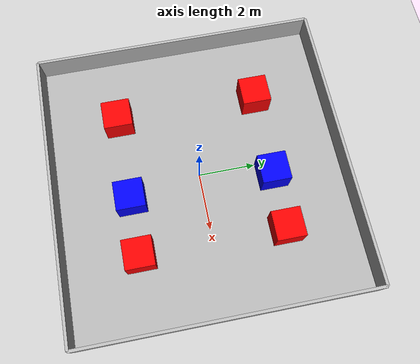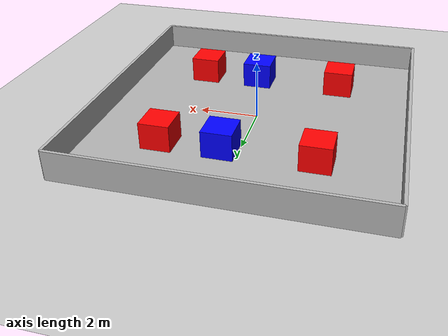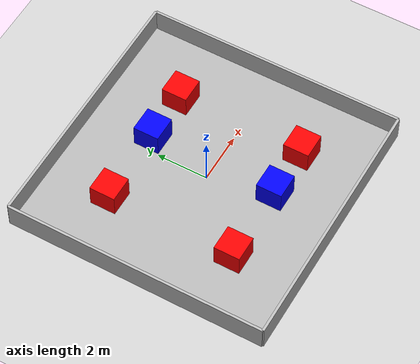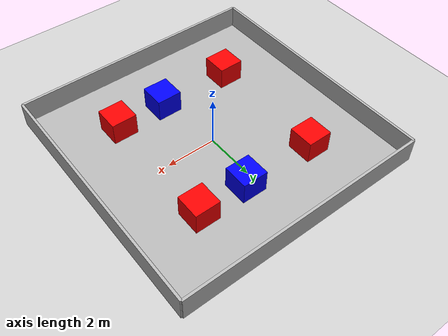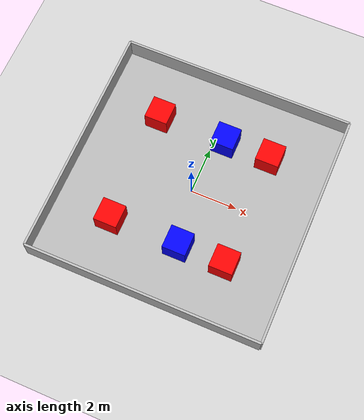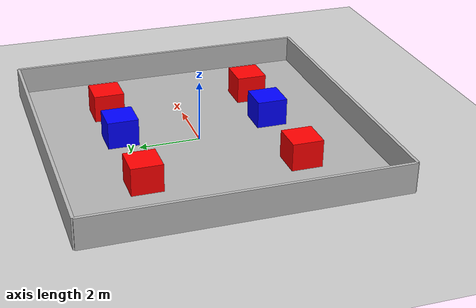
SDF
<sdf version="1.6">
 <world name="default">
  <plugin name="gazebo_ros_init" filename="libgazebo_ros_init.so"/>
  <plugin name="gazebo_ros_factory" filename="libgazebo_ros_factory.so"/>
  <plugin name="gazebo_ros_state" filename="libgazebo_ros_state.so">
   <robotNamespace>/</robotNamespace>
   <publishTf>false</publishTf>
  </plugin>
  <physics name="default_physics" type="ode">
   <max_step_size>0.005</max_step_size>
   <real_time_update_rate>2000</real_time_update_rate>
  </physics>
  <include><uri>model://ground_plane</uri></include>
  <model name="base_plate">
   <static>true</static>
   <link name="link">
    <visual name="vis">
     <geometry><box><size>10.1 10.1 0.1</size></box></geometry>
     <material><ambient>0.7 0.7 0.7 1</ambient><diffuse>0.7 0.7 0.7 1</diffuse></material>
    </visual>
    <collision name="col"><geometry><box><size>10.1 10.1 0.1</size></box></geometry></collision>
   </link>
   <pose>0 0 0.05 0 0 0</pose>
  </model>
  <model name="wall_y_pos">
   <static>true</static>
   <link name="link">
    <visual name="vis"><geometry><box><size>10.1 0.1 1</size></box></geometry></visual>
    <collision name="col"><geometry><box><size>10 0.1 1</size></box></geometry></collision>
   </link>
   <pose>0 5.05 0.5 0 0 0</pose>
  </model>
  <model name="wall_y_neg">
   <static>true</static>
   <link name="link">
    <visual name="vis"><geometry><box><size>10.1 0.1 1</size></box></geometry></visual>
    <collision name="col"><geometry><box><size>10.1 0.1 1</size></box></geometry></collision>
   </link>
   <pose>0 -5.05 0.5 0 0 0</pose>
  </model>
  <model name="wall_x_pos">
   <static>true</static>
   <link name="link">
    <visual name="vis"><geometry><box><size>0.1 10.1 1</size></box></geometry></visual>
    <collision name="col"><geometry><box><size>0.1 10.1 1</size></box></geometry></collision>
   </link>
   <pose>5.05 0 0.5 0 0 0</pose>
  </model>
  <model name="wall_x_neg">
   <static>true</static>
   <link name="link">
    <visual name="vis"><geometry><box><size>0.1 10.1 1</size></box></geometry></visual>
    <collision name="col"><geometry><box><size>0.1 10.1 1</size></box></geometry></collision>
   </link>
   <pose>-5.05 0 0.5 0 0 0</pose>
  </model>
  <model name="red_box_1">
   <static>true</static>
   <link name="link">
    <visual name="vis">
     <geometry><box><size>1 1 1</size></box></geometry>
     <material><ambient>1 0 0 1</ambient><diffuse>1 0 0 1</diffuse></material>
    </visual>
    <collision name="col"><geometry><box><size>1 1 1</size></box></geometry></collision>
   </link>
   <pose>-2.5 -2.5 0.5 0 0 0</pose>
  </model>
  <model name="red_box_2">
   <static>true</static>
   <link name="link">
    <visual name="vis">
     <geometry><box><size>1 1 1</size></box></geometry>
     <material><ambient>1 0 0 1</ambient><diffuse>1 0 0 1</diffuse></material>
    </visual>
    <collision name="col"><geometry><box><size>1 1 1</size></box></geometry></collision>
   </link>
   <pose>2.5 -2.5 0.5 0 0 0</pose>
  </model>
  <model name="red_box_3">
   <static>true</static>
   <link name="link">
    <visual name="vis">
     <geometry><box><size>1 1 1</size></box></geometry>
     <material><ambient>1 0 0 1</ambient><diffuse>1 0 0 1</diffuse></material>
    </visual>
    <collision name="col"><geometry><box><size>1 1 1</size></box></geometry></collision>
   </link>
   <pose>-2.5 2.5 0.5 0 0 0</pose>
  </model>
  <model name="red_box_4">
   <static>true</static>
   <link name="link">
    <visual name="vis">
     <geometry><box><size>1 1 1</size></box></geometry>
     <material><ambient>1 0 0 1</ambient><diffuse>1 0 0 1</diffuse></material>
    </visual>
    <collision name="col"><geometry><box><size>1 1 1</size></box></geometry></collision>
   </link>
   <pose>2.5 2.5 0.5 0 0 0</pose>
  </model>
  <model name="blue_box_1">
   <static>false</static>
   <link name="link">
    <visual name="vis">
     <geometry><box><size>1 1 1</size></box></geometry>
     <material><ambient>0 0 1 1</ambient><diffuse>0 0 1 1</diffuse></material>
    </visual>
    <collision name="col"><geometry><box><size>1 1 1</size></box></geometry></collision>
   </link>
   <pose>0.5 -2.5 0.5 0 0 0</pose>
  </model>
  <model name="blue_box_2">
   <static>false</static>
   <link name="link">
    <visual name="vis">
     <geometry><box><size>1 1 1</size></box></geometry>
     <material><ambient>0 0 1 1</ambient><diffuse>0 0 1 1</diffuse></material>
    </visual>
    <collision name="col"><geometry><box><size>1 1 1</size></box></geometry></collision>
   </link>
   <pose>0.5 2.5 0.5 0 0 0</pose>
  </model>
 </world>
</sdf>
